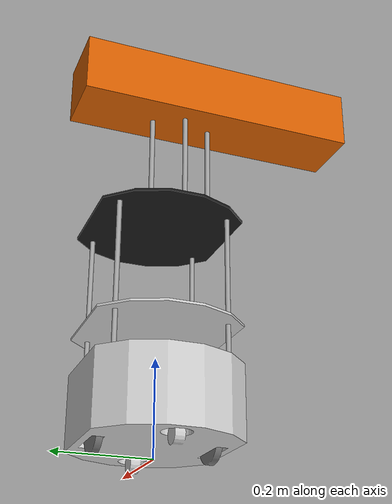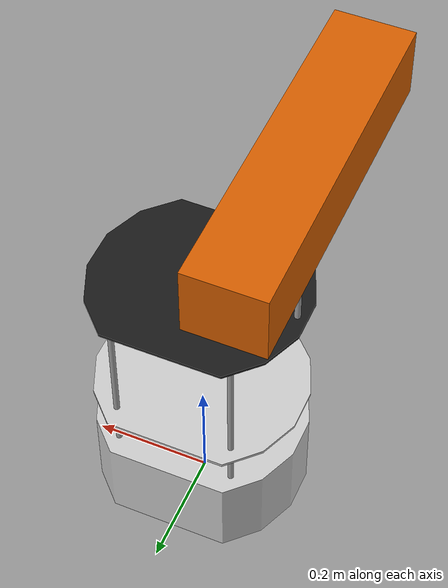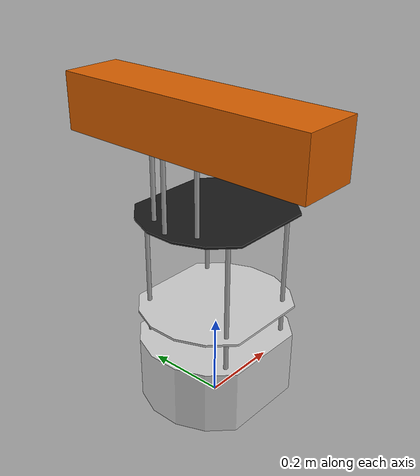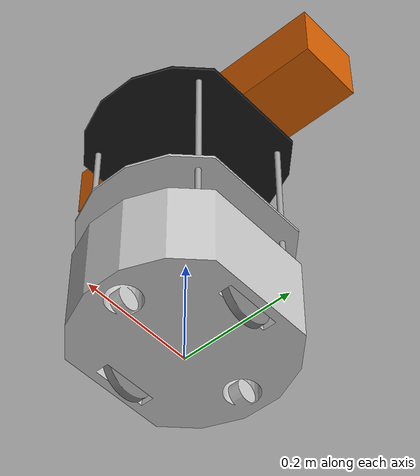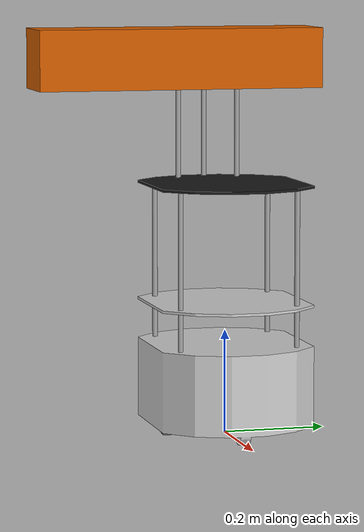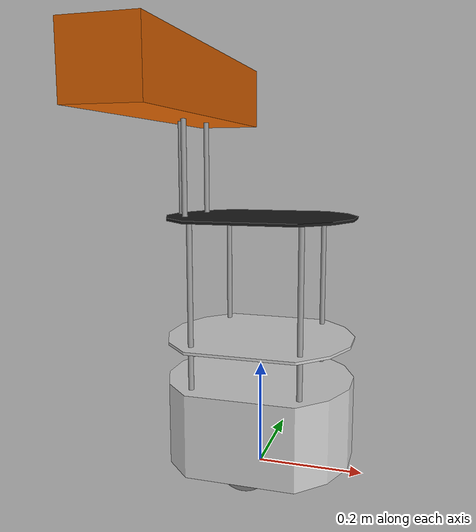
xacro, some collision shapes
<?xml version="1.0"?>
<!--
    - Base      : roch
    - Stacks    : standard
    - 3d Sensor : r200
-->
<robot name="roch" xmlns:xacro="http://ros.org/wiki/xacro">

  <xacro:include filename="$(find roch_description)/urdf/roch_library.urdf.xacro" />

  <roch/>
  <stack_standard                 parent="base_link"/>
  <sensor_r200                    parent="base_link"/>
</robot>

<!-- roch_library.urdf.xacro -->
<!--
  The complete roch library of xacros for easy reference
 -->
<robot xmlns:xacro="http://ros.org/wiki/xacro">
  <!-- General -->
  <xacro:include filename="$(find roch_description)/urdf/common_properties.urdf.xacro"/>
  <xacro:include filename="$(find roch_description)/urdf/roch_properties.urdf.xacro"/>
  <!-- Bases -->
  <xacro:include filename="$(find roch_description)/urdf/roch.urdf.xacro" />
  <!-- Stacks -->
  <xacro:include filename="$(find roch_description)/urdf/stacks/standard/standard.urdf.xacro"/>
  <!-- 3D Sensors -->
  <xacro:include filename="$(find roch_description)/urdf/sensors/kinect.urdf.xacro"/>
  <xacro:include filename="$(find roch_description)/urdf/sensors/asus_xtion_pro.urdf.xacro"/>
  <xacro:include filename="$(find roch_description)/urdf/sensors/asus_xtion_pro_offset.urdf.xacro"/>
  <xacro:include filename="$(find roch_description)/urdf/sensors/kinect_camera.urdf.xacro"/>
  <xacro:include filename="$(find roch_description)/urdf/sensors/r200.urdf.xacro"/>
  <!-- 2D Laser -->
  <xacro:include filename="$(find roch_description)/urdf/sensors/ls_ls01c.urdf.xacro"/>
  <xacro:include filename="$(find roch_description)/urdf/sensors/rplidar.urdf.xacro"/>

</robot>

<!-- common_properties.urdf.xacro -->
<!--
  Various useful properties such as constants and materials
 -->
<robot name="roch_materials" xmlns:xacro="http://ros.org/wiki/xacro">
  <xacro:property name="M_PI" value="3.1415926535897931" />
  <xacro:property name="roch_white">
    <material name="white">
      <color rgba="1 1 1 1"/>
    </material>
  </xacro:property>
  <xacro:property name="roch_dark_white">
    <material name="dark_white">
      <color rgba="0.8 0.8 0.8 1"/>
    </material>
  </xacro:property>
  <xacro:property name="roch_grey">
    <material name="grey">
      <color rgba="0.5 0.5 0.5 1"/>
    </material>
  </xacro:property>
  <xacro:property name="roch_light_grey">
    <material name="light_grey">
      <color rgba="0.6 0.6 0.6 1"/>
    </material>
  </xacro:property>
  <xacro:property name="roch_dark_grey">
    <material name="dark_grey">
      <color rgba="0.3 0.3 0.3 1"/>
    </material>
  </xacro:property>
  <xacro:property name="roch_black">
    <material name="black">
      <color rgba="0.1 0.1 0.1 1"/>
    </material>
  </xacro:property>
  <xacro:property name="roch_red">
    <material name="red">
      <color rgba="1 0 0 1"/>
    </material>
  </xacro:property>
  <xacro:property name="roch_green">
    <material name="green">
      <color rgba="0.0 0.8 0.0 1"/>
    </material>
  </xacro:property>
  <xacro:property name="roch_blue">
    <material name="blue">
      <color rgba="0.0 0.0 1.0 1"/>
    </material>
  </xacro:property>
  <xacro:property name="roch_grey_blue">
    <material name="grey_blue">
      <color rgba="0.4 0.4 1.0 1"/>
    </material>
  </xacro:property>
  <xacro:property name="roch_orange">
    <material name="orange">
      <color rgba="1.0 0.7 0.0 1"/>
    </material>
  </xacro:property>
  <xacro:property name="roch_yellow">
    <material name="Yellow">
      <color rgba="0.8 0.8 0.0 1.0"/>
    </material>
  </xacro:property>

</robot>

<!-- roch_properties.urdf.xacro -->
<robot>
  <!--
    These properties must be observed by any machine
    that wants to be defined as a turtlebot. Refer
    to the REP for more details.

    http://www.ros.org/reps/rep-0119.html
   -->

<!-- asus xtion param -->
  <property name="asus_xtion_px" value="-0.145" />
  <property name="asus_xtion_py" value="-0.025" />
  <property name="asus_xtion_pz" value="0.721" />
  <property name="asus_xtion_or" value="0" />
  <property name="asus_xtion_op" value="0" />
  <property name="asus_xtion_oy" value="0" />

<!-- kinect param -->
  <property name="kinect_px" value="-0.145" />
  <property name="kinect_py" value="-0.025" />
  <property name="kinect_pz" value="0.721" />
  <property name="kinect_or" value="0" />
  <property name="kinect_op" value="0" />
  <property name="kinect_oy" value="0" />

<!-- Intel R200 param -->
  <property name="r200_px" value="-0.135" />
  <property name="r200_py" value="-0.065" />
  <property name="r200_pz" value="0.7" />
  <property name="r200_or" value="0" />
  <property name="r200_op" value="0" />
  <property name="r200_oy" value="0" />

</robot>

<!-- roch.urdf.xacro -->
<robot name="roch" xmlns:xacro="http://ros.org/wiki/xacro">
  <xacro:include filename="$(find roch_description)/urdf/wheel.urdf.xacro" />
  <xacro:include filename="$(find roch_description)/urdf/common_properties.urdf.xacro"/>
  <xacro:include filename="$(find roch_description)/urdf/roch_gazebo.urdf.xacro"/>
  <xacro:include filename="$(find roch_description)/urdf/roch_sensors.urdf.xacro"/>
  <property name="M_PI" value="3.14159"/>

  <!-- Base Size -->
  <property name="base_x_size" value="0.353080" />
  <property name="base_y_size" value="0.299330" />
  <property name="base_z_size" value="0.150000" />
  <!-- Wheel Mounting Positions -->
  <xacro:property name="wheelbase" value="-0.095" />
  <xacro:property name="track" value="0.236" />
  <xacro:property name="wheel_vertical_offset" value="0.0248" />

  <!-- Wheel Properties -->
  <xacro:property name="wheel_length" value="0.014" />
  <xacro:property name="wheel_radius" value="0.0475" />

 <xacro:macro name="roch">

    <!-- Base link is on the ground under the robot -->
    <link name="base_footprint"/>
    <gazebo reference="base_footprint">
      <material>Gazebo/DarkGrey</material>
    </gazebo>

    <joint name="chassis_joint" type="fixed">
      <origin xyz="0 0 ${wheel_radius-wheel_vertical_offset}" rpy="0 0 0" />
      <parent link="base_footprint" />
      <child link="base_link" />
    </joint>

    <!-- Chassis link is the center of the robot's bottom plate -->
    <link name="base_link">
      <visual>
        <origin xyz="0 0 0" rpy="0 0 0" />
        <geometry>
	  <mesh filename="package://roch_description/meshes/chassis.dae"/>
        </geometry>
       <xacro:insert_block name="roch_dark_white" />
      </visual>

      <collision>
        <origin xyz="0 0 ${base_z_size*3/4}" rpy="0 0 0" />
        <geometry>
         <box size="0.35308 .29933 .155"/>
        </geometry>
      </collision>
      <inertial>
        <!-- COM experimentally determined -->
        <origin xyz="0.01 0 0"/>
        <mass value="6.7" /><!-- 6.7 kg for standard pack -->
        <inertia ixx="0.0668325" ixy="0.0" ixz="0.0" iyy="0.0668325" iyz="0.0" izz="0.10854" />
      </inertial>
    </link>
    <gazebo reference="base_link">
    </gazebo>
<!-- Xacro macros -->

  <!-- roch wheel macros -->
    <xacro:roch_wheel wheel_prefix="front_left">
      <origin xyz="0 ${track/2} ${wheel_vertical_offset-0.0005}" rpy="0 0 0" />
    </xacro:roch_wheel>
    <xacro:roch_wheel wheel_prefix="front_right">
      <origin xyz="0 ${-track/2} ${wheel_vertical_offset-0.0005}" rpy="0 0 0" />
    </xacro:roch_wheel>

   <link name="front_wheel_link">
    <collision>
        <geometry>
          <cylinder length="0.018" radius="0.0127"/>
        </geometry>
        <origin rpy="0 0 0" xyz="0 0 0"/>
      </collision>
      <inertial>
        <mass value="0.01" />
        <origin xyz="0 0 0" />
        <inertia ixx="0.001" ixy="0.0" ixz="0.0"
                 iyy="0.001" iyz="0.0"
                 izz="0.001" />
      </inertial>
   </link>
   <link name="rear_wheel_link">
    <collision>
        <geometry>
          <cylinder length="0.018" radius="0.0127"/>
        </geometry>
        <origin rpy="0 0 0" xyz="0 0 0"/>
      </collision>
      <inertial>
        <mass value="0.01" />
        <origin xyz="0 0 0" />
        <inertia ixx="0.001" ixy="0.0" ixz="0.0"
                 iyy="0.001" iyz="0.0"
                 izz="0.001" />
      </inertial>
   </link>
<!--                 modify                     -->
<!--              range_z: -0.007 ~ -0.008      -->
<!--        if not modify in gazebo will shack  -->
   <joint name="fornt_wheel_joint" type="fixed">
      <origin xyz="0.13 0 -0.0084 " rpy="${-M_PI/2} 0 0" />
      <parent link="base_link" />
      <child link="front_wheel_link" />
   </joint>
   <joint name="rear_wheel_joint" type="fixed">
      <origin xyz="-0.13 0 -0.008 " rpy="${-M_PI/2} 0 0" />
      <parent link="base_link" />
      <child link="rear_wheel_link" />
   </joint>

<!-- Roch sensors -->
 <!-- IMU Link is the standard mounting position for the R1371T IMU.-->
    <!-- Can be modified with environment variables in /etc/ros/setup.bash -->
    <link name="imu_link">
      <inertial>
        <mass value="0.001"/>
        <origin xyz="0 0 0" rpy="0 0 0"/>
        <inertia ixx="0.0001" ixy="0" ixz="0"
                 iyy="0.000001" iyz="0"
                 izz="0.0001"/>
      </inertial>
    </link>
    <joint name="imu_joint" type="fixed">
      <origin xyz="$(optenv HUSKY_IMU_XYZ 0.145 0 0.0095)" rpy="$(optenv HUSKY_IMU_RPY 0 -1.5708 3.1416)" />
      <parent link="base_link" />
      <child link="imu_link" />
      <axis xyz="0 1 0"/>
    </joint>
    <gazebo reference="imu_link">
      <sensor type="imu" name="imu">
      <always_on>true</always_on>
      <update_rate>50</update_rate>
      <visualize>false</visualize>
        <imu>
          <noise>
            <type>gaussian</type>
	          <rate>
	            <mean>0.0</mean>
	            <stddev>${0.0014*0.0014}</stddev> <!-- 0.25 x 0.25 (deg/s) -->
	            <bias_mean>0.0</bias_mean>
	            <bias_stddev>0.0</bias_stddev>
	          </rate>
		        <accel> <!-- not used in the plugin and real robot, hence using tutorial values -->
			        <mean>0.0</mean>
			        <stddev>1.7e-2</stddev>
			        <bias_mean>0.1</bias_mean>
			        <bias_stddev>0.001</bias_stddev>
		        </accel>
          </noise>
	      </imu>
      </sensor>
    </gazebo>

    <xacro:roch_ultrasonic ultrasonic_prefix="front_left" parent="base_link">
      <origin xyz="0.1631 0.06756 0.123" rpy="0 ${-M_PI/2} 0" />
    </xacro:roch_ultrasonic>
    <xacro:roch_ultrasonic ultrasonic_prefix="front_middle" parent="base_link">
      <origin xyz="0.17654 0 0.123" rpy="0 ${-M_PI/2} 0" />
    </xacro:roch_ultrasonic>
    <xacro:roch_ultrasonic ultrasonic_prefix="front_right" parent="base_link">
      <origin xyz="0.1631 -0.06756 0.123" rpy="0 ${-M_PI/2} 0" />
    </xacro:roch_ultrasonic>

    <xacro:roch_psd psd_prefix="front_left" parent="base_link">
      <origin xyz="0.1631 0.06756 0.033" rpy="0 0 0" />
    </xacro:roch_psd>
    <xacro:roch_psd psd_prefix="front_middle" parent="base_link">
      <origin xyz="0.17654 0 0.033" rpy="0 0 0" />
    </xacro:roch_psd>
    <xacro:roch_psd psd_prefix="front_right" parent="base_link">
      <origin xyz="0.1631 -0.06756 0.033" rpy="0 0 0" />
    </xacro:roch_psd>

    <xacro:roch_cliff cliff_prefix="front_left" parent="base_link">
      <origin xyz="0.12695 0.06874 0.0065" rpy="0 ${M_PI/2} 0" />
    </xacro:roch_cliff>
    <xacro:roch_cliff cliff_prefix="front_right" parent="base_link">
      <origin xyz="0.12695 -0.06874 0.0065" rpy="0 ${M_PI/2} 0" />
    </xacro:roch_cliff>

 <!-- roch Gazebo simulation details -->
  <roch_robot_gazebo/>

</xacro:macro>

</robot>

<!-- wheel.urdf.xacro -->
<robot xmlns:xacro="http://ros.org/wiki/xacro" name="roch_wheel">

	<xacro:macro name="roch_wheel" params="wheel_prefix *joint_pose">
		<link name="${wheel_prefix}_wheel_link">
			<inertial>
				<mass value="0.1" />
				<origin xyz="0 0 0" />
				<inertia  ixx="0.00022725" ixy="0" ixz="0" iyy="0.00022725" iyz="0" izz="0.00006317" />
			</inertial>
			<visual>
				<origin xyz="0 0 0" rpy="0 0 0" />
				<geometry>
					<mesh filename="package://roch_description/meshes/wheel.dae" />
				</geometry>
				<xacro:insert_block name="roch_grey" />
			</visual>
			<collision>
				<origin xyz="0 0 0" rpy="${M_PI/2} 0 0" />
				<geometry>
					<cylinder length="${wheel_length}" radius="${wheel_radius}" />
				</geometry>
			</collision>
		</link>

		<gazebo reference="${wheel_prefix}_wheel_link">
			<mu1 value="1.0"/>
			<mu2 value="1.0"/>
			<kp value="10000000.0" />
			<kd value="1.0" />
			<fdir1 value="1 0 0"/>
			<material>Gazebo/Grey</material>
			<turnGravityOff>false</turnGravityOff>
		</gazebo>

		<joint name="${wheel_prefix}_wheel" type="continuous">
			<parent link="base_link"/>
			<child link="${wheel_prefix}_wheel_link"/>
			<xacro:insert_block name="joint_pose"/>
			<axis xyz="0 1 0" rpy="0 0 0" />
		</joint>

		<transmission name="${wheel_prefix}_wheel_trans" type="SimpleTransmission">
			<type>transmission_interface/SimpleTransmission</type>
			<actuator name="${wheel_prefix}_wheel_motor">
				<mechanicalReduction>1</mechanicalReduction>
			</actuator>
			<joint name="${wheel_prefix}_wheel">
				<hardwareInterface>VelocityJointInterface</hardwareInterface>
			</joint>
		</transmission>

	</xacro:macro>
</robot>

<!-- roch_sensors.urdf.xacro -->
<robot xmlns:xacro="http://ros.org/wiki/xacro" name="roch_sensors">

	<xacro:macro name="roch_ultrasonic" params="ultrasonic_prefix parent *joint_pose">
		<link name="ultrasonic_sensor_${ultrasonic_prefix}_link">
			<inertial>
				<mass value="0.1" />
				<origin xyz="0 0 0" />
				<inertia  ixx="0.0001" ixy="0" ixz="0" iyy="0.0001" iyz="0" izz="0.0001" />
			</inertial>
		</link>

		<joint name="ultrasonic_sensor_${ultrasonic_prefix}_joint" type="fixed">
			<parent link="base_link"/>
			<child link="ultrasonic_sensor_${ultrasonic_prefix}_link"/>
			<xacro:insert_block name="joint_pose"/>
		</joint>

		<gazebo reference="ultrasonic_sensor_${ultrasonic_prefix}_link">
	          <sensor type="sonar" name="ultrasonic_sensor_${ultrasonic_prefix}">
	          <always_on>true</always_on>
	          <update_rate>30</update_rate>
	          <visualize>true</visualize>
                  <sonar>
                      <min>0</min>
                      <max>0.8</max>
                      <radius>0.261799</radius>
     	            </sonar>
	          </sensor>
	        </gazebo>
	</xacro:macro>

	<xacro:macro name="roch_psd" params="psd_prefix parent *joint_pose">
		<link name="psd_sensor_${psd_prefix}_link">
			<inertial>
				<mass value="0.1" />
				<origin xyz="0 0 0" />
				<inertia  ixx="0.0001" ixy="0" ixz="0" iyy="0.0001" iyz="0" izz="0.0001" />
			</inertial>
		</link>

		<joint name="psd_sensor_${psd_prefix}_joint" type="fixed">
			<parent link="base_link"/>
			<child link="psd_sensor_${psd_prefix}_link"/>
			<xacro:insert_block name="joint_pose"/>
		</joint>

		<gazebo reference="psd_sensor_${psd_prefix}_link">
	          <sensor type="ray" name="psd_sensor_${psd_prefix}">
	            <always_on>true</always_on>
	            <update_rate>50</update_rate>
	            <visualize>true</visualize>
	            <ray>
	              <scan>
	                <horizontal>
	                  <samples>50</samples>
	                  <resolution>1.0</resolution>
	                  <min_angle>-0.0436</min_angle>  <!-- -2.5 degree -->
	                  <max_angle>0.0436</max_angle> <!-- 2.5 degree -->
	                </horizontal>
	              </scan>
	              <range>
	                <min>0.10</min>
	                <max>0.8</max>
	                <resolution>1.0</resolution>
	              </range>
	            </ray>
	          </sensor>
	        </gazebo>
	</xacro:macro>

	<xacro:macro name="roch_cliff" params="cliff_prefix parent *joint_pose">
		<link name="cliff_sensor_${cliff_prefix}_link">
			<inertial>
				<mass value="0.1" />
				<origin xyz="0 0 0" />
				<inertia  ixx="0.0001" ixy="0" ixz="0" iyy="0.0001" iyz="0" izz="0.0001" />
			</inertial>
		</link>

		<joint name="cliff_sensor_${cliff_prefix}_joint" type="fixed">
			<parent link="base_link"/>
			<child link="cliff_sensor_${cliff_prefix}_link"/>
			<xacro:insert_block name="joint_pose"/>
		</joint>

		<gazebo reference="cliff_sensor_${cliff_prefix}_link">
	          <sensor type="ray" name="cliff_sensor_${cliff_prefix}">
	            <always_on>true</always_on>
	            <update_rate>50</update_rate>
	            <visualize>true</visualize>
	            <ray>
	              <scan>
	                <horizontal>
	                  <samples>50</samples>
	                  <resolution>1.0</resolution>
	                  <min_angle>-0.0436</min_angle>  <!-- -2.5 degree -->
	                  <max_angle>0.0436</max_angle> <!-- 2.5 degree -->
	                </horizontal>
	              </scan>
	              <range>
	                <min>0.01</min>
	                <max>0.15</max>
	                <resolution>1.0</resolution>
	              </range>
	            </ray>
	          </sensor>
	        </gazebo>
	</xacro:macro>
</robot>

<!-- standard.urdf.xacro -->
<!--
  standard stacks of Roch
 -->
<robot name="stack_standard" xmlns:xacro="http://ros.org/wiki/xacro">
  <xacro:include filename="$(find roch_description)/urdf/common_properties.urdf.xacro"/>

  <!-- hexagons for roch -->
    <!-- Xacro properties -->
  <xacro:property name="M_SCALE" value="0.001"/>
<!-- Xacro macros -->
  <!-- Pole bottom macros -->
  <xacro:macro name="stack_bottom_pole" params="parent number x_loc y_loc z_loc">
    <joint name="pole_bottom_${number}_joint" type="fixed">
      <origin xyz="${x_loc} ${y_loc} ${z_loc}" rpy="0 ${M_PI} 0"/>
      <parent link="${parent}"/>
      <child link="pole_bottom_${number}_link"/>
    </joint>
    <link name="pole_bottom_${number}_link">
      <visual>
        <origin xyz="0 0 0" rpy="0 0 0"/>
        <geometry>
          <mesh filename="package://roch_description/meshes/stacks/pole_bottom.dae"/>
        </geometry>
      </visual>
      <collision>
        <origin xyz="0 0 0" rpy="0 0 0"/>
        <geometry>
          <cylinder length="0.242" radius="0.01"/>
        </geometry>
      </collision>
      <inertial>
        <mass value="0.05"/>
        <origin xyz="0 0 0" rpy="0 0 0"/>
        <inertia ixx="0.000244329" ixy="0.0" ixz="0.0"
                 iyy="0.000244329" iyz="0.0"
                 izz="0.000000625"/>
      </inertial>
    </link>
  </xacro:macro>

  <!-- Pole middle macros -->
  <xacro:macro name="stack_middle_pole" params="parent number x_loc y_loc z_loc">
    <joint name="pole_middle_${number}_joint" type="fixed">
      <origin xyz="${x_loc} ${y_loc} ${z_loc}" rpy="0 0 0"/>
      <parent link="${parent}"/>
      <child link="pole_middle_${number}_link"/>
    </joint>
    <link name="pole_middle_${number}_link">
      <visual>
        <origin xyz="0 0 0" rpy="0 0 0"/>
        <geometry>
          <mesh filename="package://roch_description/meshes/stacks/pole_top.dae"/>
        </geometry>
      </visual>
      <collision>
        <origin xyz="0 0 0" rpy="0 0 0"/>
        <geometry>
          <cylinder length="0.230" radius="0.01"/>
        </geometry>
      </collision>
      <inertial>
        <mass value="0.048"/>
        <origin xyz="0 0 0" rpy="0 0 0"/>
        <inertia ixx="0.0002119" ixy="0.0" ixz="0.0"
                 iyy="0.0002119" iyz="0.0"
                 izz="0.0000006"/>
      </inertial>
    </link>
  </xacro:macro>

 <!-- Pole top macros -->
  <xacro:macro name="stack_top_pole" params="parent number x_loc y_loc z_loc">
    <joint name="pole_top_${number}_joint" type="fixed">
      <origin xyz="${x_loc} ${y_loc} ${z_loc}" rpy="0 0 0"/>
      <parent link="${parent}"/>
      <child link="pole_top_${number}_link"/>
    </joint>
    <link name="pole_top_${number}_link">
      <visual>
        <origin xyz="0 0 0" rpy="0 0 0"/>
        <geometry>
          <mesh filename="package://roch_description/meshes/stacks/pole_top.dae"/>
        </geometry>
      </visual>
      <collision>
        <origin xyz="0 0 0" rpy="0 0 0"/>
        <geometry>
          <cylinder length="0.23" radius="0.01"/>
        </geometry>
      </collision>
      <inertial>
        <mass value="0.048"/>
        <origin xyz="0 0 0" rpy="0 0 0"/>
        <inertia ixx="0.0002119" ixy="0.0" ixz="0.0"
                 iyy="0.0002119" iyz="0.0"
                 izz="0.0000006"/>
      </inertial>
    </link>
  </xacro:macro>
 <xacro:macro name="stack_standard" params="parent">

    <stack_bottom_pole parent="${parent}" number="0" x_loc= "0.1" y_loc= "0.115" z_loc="0.121"/>
    <stack_bottom_pole parent="${parent}" number="1" x_loc= "-0.1" y_loc= "0.115" z_loc="0.121"/>
    <stack_bottom_pole parent="${parent}" number="2" x_loc="0.1" y_loc= "-0.115" z_loc="0.121"/>
    <stack_bottom_pole parent="${parent}" number="3" x_loc= "-0.1" y_loc="-0.115" z_loc="0.121"/>

   <!-- bottom plate for Roch-->
   <joint name="plate_bottom_joint" type="fixed">
      <origin xyz="0 0.0 0.23" rpy="0 0 0"/>
      <parent link="base_link"/>
      <child link="plate_bottom_link"/>
    </joint>
    <link name="plate_bottom_link">
      <visual>
        <origin xyz="0 0 0" rpy="0 0 0"/>
        <geometry>
          <mesh filename="package://roch_description/meshes/stacks/plate_bottom.dae"/>
        </geometry>
	<xacro:insert_block name="roch_dark_white"/>
      </visual>
      <collision>
        <origin xyz="0 0 0" rpy="0 0 0"/>
        <geometry>
          <cylinder length="0.005" radius="0.170"/>
        </geometry>
      </collision>
      <inertial>
        <mass value="0.45" />
        <origin xyz="0 0 0" />
        <inertia ixx="0.000176467" ixy="0.0" ixz="0.0"
                 iyy="0.000176467" iyz="0.0"
                 izz="0.00035106" />
      </inertial>
    </link>

    <stack_middle_pole parent="${parent}" number="0" x_loc= "0.1" y_loc= "0.115" z_loc="0.346"/>
    <stack_middle_pole parent="${parent}" number="1" x_loc= "-0.1" y_loc= "0.115" z_loc="0.346"/>
    <stack_middle_pole parent="${parent}" number="2" x_loc="0.1" y_loc= "-0.115" z_loc="0.346"/>
    <stack_middle_pole parent="${parent}" number="3" x_loc= "-0.1" y_loc="-0.115" z_loc="0.346"/>

   <!-- middle plate for Roch-->
   <joint name="plate_middle_joint" type="fixed">
      <origin xyz="0 0.0 0.46" rpy="0 0 0"/>
      <parent link="base_link"/>
      <child link="plate_middle_link"/>
    </joint>
    <link name="plate_middle_link">
      <visual>
        <origin xyz="0 0 0" rpy="0 0 0"/>
        <geometry>
          <mesh filename="package://roch_description/meshes/stacks/plate_middle.dae"/>
        </geometry>
	<xacro:insert_block name="roch_black"/>
      </visual>
      <collision>
        <origin xyz="0.0 0 0" rpy="0 0 0"/>
        <geometry>
          <cylinder length="0.005" radius="0.170"/>
        </geometry>
      </collision>
      <inertial>
        <mass value="0.45" />
        <origin xyz="0 0 0" />
        <inertia ixx="0.0032521875" ixy="0.0" ixz="0.0"
                 iyy="0.0032521875" iyz="0.0"
                 izz="0.0065025" />
      </inertial>
    </link>

    <stack_top_pole parent="${parent}" number="0" x_loc="-0.16" y_loc= "0.0" z_loc="0.576"/>
    <stack_top_pole parent="${parent}" number="1" x_loc="-0.13" y_loc= "0.06" z_loc="0.576"/>
    <stack_top_pole parent="${parent}" number="2" x_loc="-0.13" y_loc= "-0.06" z_loc="0.576"/>

<!-- sensor plate for Roch-->
   <joint name="plate_sensor_joint" type="fixed">
      <origin xyz="-0.14 0.0 0.691" rpy="0 0 0"/>
      <parent link="base_link"/>
      <child link="plate_sensor_link"/>
    </joint>
    <link name="plate_sensor_link">
      <visual>
        <origin xyz="0 0 0" rpy="0 0 0"/>
        <geometry>
          <mesh filename="package://roch_description/meshes/stacks/plate_sensor.dae"/>
        </geometry>
	<xacro:insert_block name="roch_white"/>
      </visual>
      <collision>
        <origin xyz="-0.145 0.0 0.616" rpy="0 0 0"/>
        <geometry>
           <box size="0.07 0.14 0.005"/>
        </geometry>
      </collision>
      <inertial>
        <mass value="0.05" />
        <origin xyz="0 0 0" />
        <inertia ixx="0.00001960729" ixy="0.0" ixz="0.0"
                 iyy="0.00001960729" iyz="0.0"
                 izz="0.00003900625" />
      </inertial>
    </link>
  </xacro:macro>
</robot>

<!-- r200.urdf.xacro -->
<robot name="sensor_r200" xmlns:xacro="http://ros.org/wiki/xacro">
  <xacro:include filename="$(find roch_description)/urdf/roch_gazebo.urdf.xacro"/>
  <xacro:include filename="$(find roch_description)/urdf/roch_properties.urdf.xacro"/>

  <!-- Mount and camera parameters -->

  <xacro:property name="r200_cam_rgb_px" value="0.005"/>
  <xacro:property name="r200_cam_rgb_py" value="0.018"/>
  <xacro:property name="r200_cam_rgb_pz" value="0.013"/>
  <xacro:property name="r200_cam_depth_offset" value="0.01"/>

  <xacro:macro name="sensor_r200" params="parent">

    <!-- camera body -->
    <joint name="camera_joint" type="fixed">
      <origin xyz="${r200_px} ${r200_py} ${r200_pz}" rpy="0 0 0"/>
      <parent link="${parent}"/>
      <child link="camera" />
    </joint>
    <link name="camera">
      <visual>
       <origin xyz="0 0 0" rpy="${M_PI/2} 0 ${M_PI/2}"/>
        <geometry>
         <mesh filename="package://roch_description/meshes/sensors/r200.dae" />
        </geometry>
      </visual>
      <collision>
        <origin xyz="0.0 0.0 0.0" rpy="0 0 0"/>
        <geometry>
          <box size="0.130 0.567 0.118"/>
        </geometry>
      </collision>

      <!-- This inertial field needs doesn't contain reliable data!! -->
     <inertial>
        <mass value="0.564" />
        <origin xyz="0 0 0" />
        <inertia ixx="0.003881243" ixy="0.0" ixz="0.0"
                 iyy="0.000498940" iyz="0.0"
                 izz="0.003879257" />
      </inertial>
    </link>

    <!--
    ==  RGB joints & links ==
    -->

    <joint name="camera_rgb_joint" type="fixed">
      <origin xyz="${r200_cam_rgb_px} ${r200_cam_rgb_py} ${r200_cam_rgb_pz}" rpy="0 0 0"/>
      <parent link="camera"/>
      <child link="camera_rgb_frame" />
    </joint>
    <link name="camera_rgb_frame"/>

    <joint name="camera_rgb_optical_joint" type="fixed">
      <origin xyz="0 0 0" rpy="${-M_PI/2} 0 ${-M_PI/2}" />
      <parent link="camera_rgb_frame" />
      <child link="camera_rgb_optical_frame" />
    </joint>
    <link name="camera_rgb_optical_frame"/>

    <!--
    ==  Depth joints & links ==
    -->

    <joint name="camera_depth_joint" type="fixed">
        <origin xyz="0 ${r200_cam_depth_offset} 0" rpy="0 0 0" />
        <parent link="camera_rgb_frame" />
        <child link="camera_depth_frame" />
    </joint>
    <link name="camera_depth_frame"/>

    <joint name="camera_depth_optical_joint" type="fixed">
        <origin xyz="0 0 0" rpy="${-M_PI/2} 0 ${-M_PI/2}" />
        <parent link="camera_depth_frame" />
        <child link="camera_depth_optical_frame" />
    </joint>
    <link name="camera_depth_optical_frame"/>

  	<!-- Simulation sensor -->
    <roch_sim_3dsensor/>
  </xacro:macro>
</robot>
